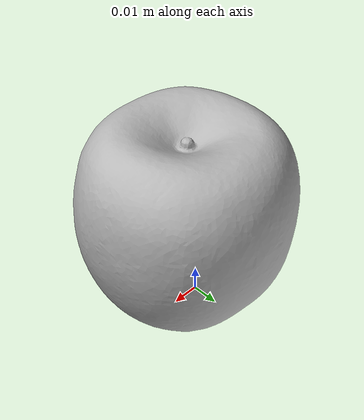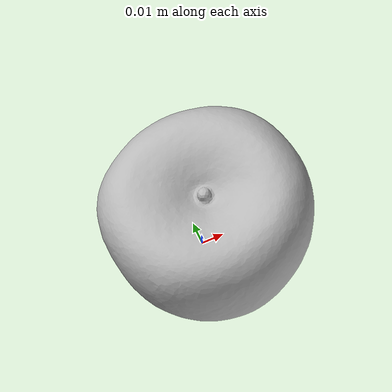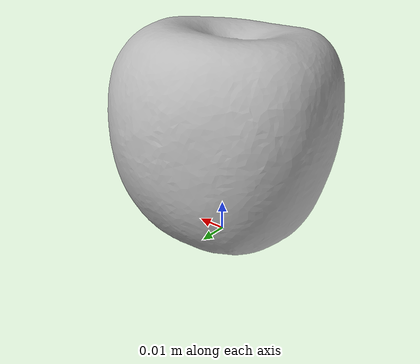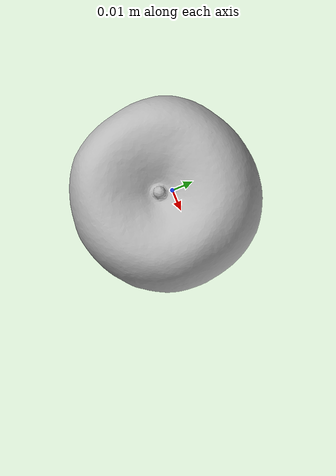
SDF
<?xml version='1.0'?>
<sdf version="1.4">
  <model name="apple">
    <static>false</static>
    <link name="link">
      <inertial>
        <pose>0.0013105802251075094 -0.003861242636253375 0.03633673271131293 1.286588016581226 -0.49579231968013265 -1.5779571819367095</pose>
        <mass>0.0002465953911687125</mass>
        <inertia>
          <ixx>1.5346617709147597e-07</ixx>
          <ixy>-1.944574775393758e-23</ixy>
          <ixz>1.3580856376717886e-24</ixz>
          <iyy>1.5237248423959713e-07</iyy>
          <iyz>6.007441597418955e-24</iyz>
          <izz>1.5058285191115322e-07</izz>
        </inertia>
      </inertial>
      <collision name="collision">
        <geometry>
          <mesh>
            <!-- Use a downsampled mesh for collisions -->
            <uri>model://013_apple/google_16k/013_apple.obj</uri>
            </mesh>
        </geometry>
        <surface>
          <friction>
            <ode>
              <mu>0.9</mu>
              <mu2>0.9</mu2>
            </ode>
          </friction>
          <contact>
            <ode>
              <kp>1000000000000.0</kp>
              <kd>1</kd>
              <min_depth>0.0001</min_depth>
              <max_vel>0.01</max_vel>
            </ode>
          </contact>
          <bounce>
            <restitution_coefficient>0.1</restitution_coefficient>
            <threshold>1000.0</threshold>
          </bounce>
        </surface>
      </collision>
      <visual name="visual">
        <geometry>
          <mesh>
            <uri>model://013_apple/google_16k/013_apple.dae</uri>
            </mesh>
        </geometry>
      </visual>
    </link>
  </model>
</sdf>
